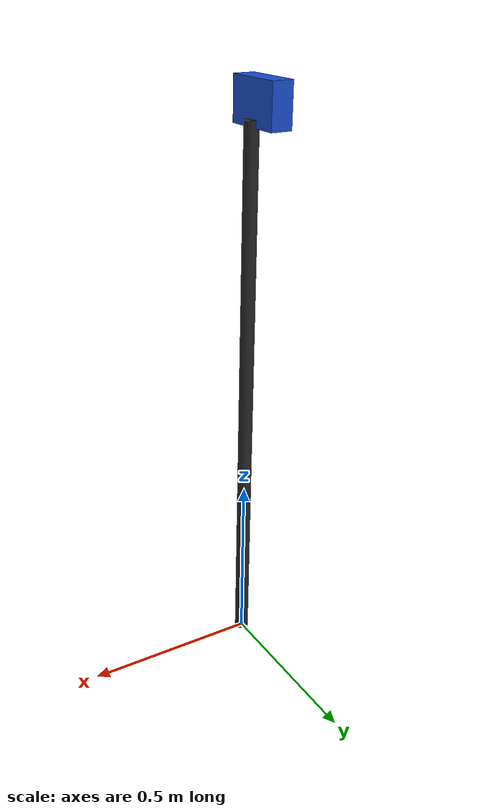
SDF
<?xml version="1.0" encoding="UTF-8"?>
<sdf version="1.9">
  <model name="device">
    <static>true</static>
    <link name="link">
      <visual name="post">
        <pose>0 0 0.78 0 0 0</pose>
        <geometry>
          <cylinder>
            <radius>0.02</radius>
            <length>1.56</length>
          </cylinder>
        </geometry>
        <material>
          <diffuse>0.15 0.15 0.15 1</diffuse>
          <ambient>0.15 0.15 0.15 1</ambient>
        </material>
      </visual>
      <visual name="body">
        <pose>-0.03 0 1.6 0 0 0</pose>
        <geometry>
          <box>
            <size>0.06 0.18 0.12</size>
          </box>
        </geometry>
        <material>
          <diffuse>0.1 0.3 0.8 1</diffuse>
          <ambient>0.1 0.3 0.8 1</ambient>
        </material>
      </visual>
      <sensor name="camera" type="camera">
        <pose>0 0 1.6 0 0 0</pose>
        <always_on>1</always_on>
        <update_rate>15</update_rate>
        <visualize>false</visualize>
        <topic>device/camera/image</topic>
        <camera>
          <horizontal_fov>1.2217</horizontal_fov>
          <image>
            <width>640</width>
            <height>480</height>
            <format>R8G8B8</format>
          </image>
          <clip>
            <near>0.1</near>
            <far>120</far>
          </clip>
        </camera>
      </sensor>
    </link>
  </model>
</sdf>
